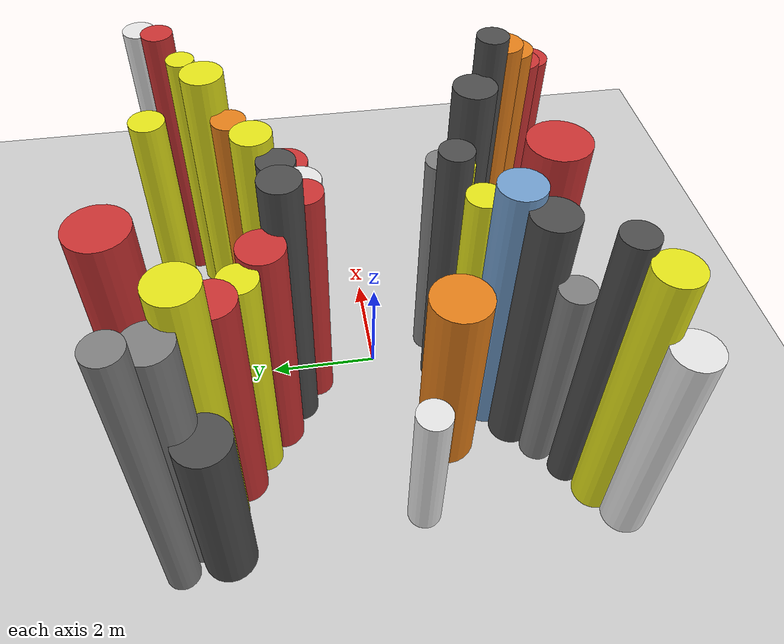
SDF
<?xml version='1.0'?>
<sdf version='1.6'>
  <world name='routeA_rl_v1__dense_recovery__rl_train__bottleneck_corridor__000028'>
    <!-- Sun light -->
    <light name='sun' type='directional'>
      <cast_shadows>1</cast_shadows>
      <pose>0 0 10 0 0 0</pose>
      <diffuse>0.8 0.8 0.8 1</diffuse>
      <specular>0.2 0.2 0.2 1</specular>
      <attenuation>
        <range>1000</range>
        <constant>0.9</constant>
        <linear>0.01</linear>
        <quadratic>0.001</quadratic>
      </attenuation>
      <direction>-0.5 0.1 -0.9</direction>
    </light>

    <!-- Ground plane -->
    <model name='ground_plane'>
      <static>1</static>
      <link name='link'>
        <collision name='collision'>
          <geometry>
            <plane>
              <normal>0 0 1</normal>
              <size>100 100</size>
            </plane>
          </geometry>
          <surface>
            <contact>
              <collide_bitmask>65535</collide_bitmask>
              <ode/>
            </contact>
            <friction>
              <ode>
                <mu>100</mu>
                <mu2>50</mu2>
              </ode>
              <torsional><ode/></torsional>
            </friction>
            <bounce/>
          </surface>
          <max_contacts>10</max_contacts>
        </collision>
        <visual name='visual'>
          <cast_shadows>0</cast_shadows>
          <geometry>
            <plane>
              <normal>0 0 1</normal>
              <size>100 100</size>
            </plane>
          </geometry>
          <material>
            <script>
              <uri>file://media/materials/scripts/gazebo.material</uri>
              <n>Gazebo/Grey</n>
            </script>
          </material>
        </visual>
      </link>
    </model>

    <!-- Environment -->
    <magnetic_field>6e-06 2.3e-05 -4.2e-05</magnetic_field>
    <atmosphere type='adiabatic'/>
    <physics name='default_physics' default='0' type='ode'>
      <gravity>0 0 -9.8</gravity>
      <max_step_size>0.004</max_step_size>
      <real_time_factor>1</real_time_factor>
      <real_time_update_rate>250</real_time_update_rate>
    </physics>
    <scene>
      <ambient>0.4 0.4 0.4 1</ambient>
      <background>0.7 0.7 0.7 1</background>
      <shadows>1</shadows>
    </scene>
    <wind/>
    <spherical_coordinates>
      <surface_model>EARTH_WGS84</surface_model>
      <latitude_deg>0</latitude_deg>
      <longitude_deg>0</longitude_deg>
      <elevation>0</elevation>
      <heading_deg>0</heading_deg>
    </spherical_coordinates>

    <!-- ============ OBSTACLES (40) ============ -->
    <model name='funnel_l_0'>
      <static>1</static>
      <link name='link'>
        <visual name='visual'>
          <geometry>
            <cylinder>
              <radius>0.3884</radius>
              <length>4.5175</length>
            </cylinder>
          </geometry>
          <material>
            <script>
              <n>Gazebo/White</n>
              <uri>file://media/materials/scripts/gazebo.material</uri>
            </script>
            <ambient>0.9 0.9 0.9 1</ambient>
          </material>
        </visual>
        <collision name='collision'>
          <geometry>
            <cylinder>
              <radius>0.3884</radius>
              <length>4.5175</length>
            </cylinder>
          </geometry>
          <max_contacts>10</max_contacts>
          <surface>
            <contact><ode/></contact>
            <bounce/>
            <friction>
              <ode><mu>1</mu><mu2>1</mu2></ode>
              <torsional><ode/></torsional>
            </friction>
          </surface>
        </collision>
      </link>
      <pose>-4.0000 -3.8000 2.2587 0 0 0.0000</pose>
    </model>

    <model name='funnel_r_0'>
      <static>1</static>
      <link name='link'>
        <visual name='visual'>
          <geometry>
            <cylinder>
              <radius>0.2866</radius>
              <length>5.9303</length>
            </cylinder>
          </geometry>
          <material>
            <script>
              <n>Gazebo/Grey</n>
              <uri>file://media/materials/scripts/gazebo.material</uri>
            </script>
            <ambient>0.5 0.5 0.5 1</ambient>
          </material>
        </visual>
        <collision name='collision'>
          <geometry>
            <cylinder>
              <radius>0.2866</radius>
              <length>5.9303</length>
            </cylinder>
          </geometry>
          <max_contacts>10</max_contacts>
          <surface>
            <contact><ode/></contact>
            <bounce/>
            <friction>
              <ode><mu>1</mu><mu2>1</mu2></ode>
              <torsional><ode/></torsional>
            </friction>
          </surface>
        </collision>
      </link>
      <pose>-4.0000 3.8000 2.9651 0 0 0.0000</pose>
    </model>

    <model name='funnel_l_1'>
      <static>1</static>
      <link name='link'>
        <visual name='visual'>
          <geometry>
            <cylinder>
              <radius>0.3729</radius>
              <length>5.6338</length>
            </cylinder>
          </geometry>
          <material>
            <script>
              <n>Gazebo/Yellow</n>
              <uri>file://media/materials/scripts/gazebo.material</uri>
            </script>
            <ambient>0.9 0.9 0.1 1</ambient>
          </material>
        </visual>
        <collision name='collision'>
          <geometry>
            <cylinder>
              <radius>0.3729</radius>
              <length>5.6338</length>
            </cylinder>
          </geometry>
          <max_contacts>10</max_contacts>
          <surface>
            <contact><ode/></contact>
            <bounce/>
            <friction>
              <ode><mu>1</mu><mu2>1</mu2></ode>
              <torsional><ode/></torsional>
            </friction>
          </surface>
        </collision>
      </link>
      <pose>-3.4857 -3.4286 2.8169 0 0 0.0000</pose>
    </model>

    <model name='funnel_r_1'>
      <static>1</static>
      <link name='link'>
        <visual name='visual'>
          <geometry>
            <cylinder>
              <radius>0.3765</radius>
              <length>5.3426</length>
            </cylinder>
          </geometry>
          <material>
            <script>
              <n>Gazebo/Grey</n>
              <uri>file://media/materials/scripts/gazebo.material</uri>
            </script>
            <ambient>0.5 0.5 0.5 1</ambient>
          </material>
        </visual>
        <collision name='collision'>
          <geometry>
            <cylinder>
              <radius>0.3765</radius>
              <length>5.3426</length>
            </cylinder>
          </geometry>
          <max_contacts>10</max_contacts>
          <surface>
            <contact><ode/></contact>
            <bounce/>
            <friction>
              <ode><mu>1</mu><mu2>1</mu2></ode>
              <torsional><ode/></torsional>
            </friction>
          </surface>
        </collision>
      </link>
      <pose>-3.4857 3.4286 2.6713 0 0 0.0000</pose>
    </model>

    <model name='funnel_l_2'>
      <static>1</static>
      <link name='link'>
        <visual name='visual'>
          <geometry>
            <cylinder>
              <radius>0.2924</radius>
              <length>5.8077</length>
            </cylinder>
          </geometry>
          <material>
            <script>
              <n>Gazebo/DarkGrey</n>
              <uri>file://media/materials/scripts/gazebo.material</uri>
            </script>
            <ambient>0.3 0.3 0.3 1</ambient>
          </material>
        </visual>
        <collision name='collision'>
          <geometry>
            <cylinder>
              <radius>0.2924</radius>
              <length>5.8077</length>
            </cylinder>
          </geometry>
          <max_contacts>10</max_contacts>
          <surface>
            <contact><ode/></contact>
            <bounce/>
            <friction>
              <ode><mu>1</mu><mu2>1</mu2></ode>
              <torsional><ode/></torsional>
            </friction>
          </surface>
        </collision>
      </link>
      <pose>-2.9714 -3.0571 2.9039 0 0 0.0000</pose>
    </model>

    <model name='funnel_r_2'>
      <static>1</static>
      <link name='link'>
        <visual name='visual'>
          <geometry>
            <cylinder>
              <radius>0.3986</radius>
              <length>5.8064</length>
            </cylinder>
          </geometry>
          <material>
            <script>
              <n>Gazebo/Yellow</n>
              <uri>file://media/materials/scripts/gazebo.material</uri>
            </script>
            <ambient>0.9 0.9 0.1 1</ambient>
          </material>
        </visual>
        <collision name='collision'>
          <geometry>
            <cylinder>
              <radius>0.3986</radius>
              <length>5.8064</length>
            </cylinder>
          </geometry>
          <max_contacts>10</max_contacts>
          <surface>
            <contact><ode/></contact>
            <bounce/>
            <friction>
              <ode><mu>1</mu><mu2>1</mu2></ode>
              <torsional><ode/></torsional>
            </friction>
          </surface>
        </collision>
      </link>
      <pose>-2.9714 3.0571 2.9032 0 0 0.0000</pose>
    </model>

    <model name='funnel_l_3'>
      <static>1</static>
      <link name='link'>
        <visual name='visual'>
          <geometry>
            <cylinder>
              <radius>0.3054</radius>
              <length>4.2600</length>
            </cylinder>
          </geometry>
          <material>
            <script>
              <n>Gazebo/Grey</n>
              <uri>file://media/materials/scripts/gazebo.material</uri>
            </script>
            <ambient>0.5 0.5 0.5 1</ambient>
          </material>
        </visual>
        <collision name='collision'>
          <geometry>
            <cylinder>
              <radius>0.3054</radius>
              <length>4.2600</length>
            </cylinder>
          </geometry>
          <max_contacts>10</max_contacts>
          <surface>
            <contact><ode/></contact>
            <bounce/>
            <friction>
              <ode><mu>1</mu><mu2>1</mu2></ode>
              <torsional><ode/></torsional>
            </friction>
          </surface>
        </collision>
      </link>
      <pose>-2.4571 -2.6857 2.1300 0 0 0.0000</pose>
    </model>

    <model name='funnel_r_3'>
      <static>1</static>
      <link name='link'>
        <visual name='visual'>
          <geometry>
            <cylinder>
              <radius>0.3887</radius>
              <length>4.9084</length>
            </cylinder>
          </geometry>
          <material>
            <script>
              <n>Gazebo/Red</n>
              <uri>file://media/materials/scripts/gazebo.material</uri>
            </script>
            <ambient>0.8 0.2 0.2 1</ambient>
          </material>
        </visual>
        <collision name='collision'>
          <geometry>
            <cylinder>
              <radius>0.3887</radius>
              <length>4.9084</length>
            </cylinder>
          </geometry>
          <max_contacts>10</max_contacts>
          <surface>
            <contact><ode/></contact>
            <bounce/>
            <friction>
              <ode><mu>1</mu><mu2>1</mu2></ode>
              <torsional><ode/></torsional>
            </friction>
          </surface>
        </collision>
      </link>
      <pose>-2.4571 2.6857 2.4542 0 0 0.0000</pose>
    </model>

    <model name='funnel_l_4'>
      <static>1</static>
      <link name='link'>
        <visual name='visual'>
          <geometry>
            <cylinder>
              <radius>0.3950</radius>
              <length>5.3540</length>
            </cylinder>
          </geometry>
          <material>
            <script>
              <n>Gazebo/DarkGrey</n>
              <uri>file://media/materials/scripts/gazebo.material</uri>
            </script>
            <ambient>0.3 0.3 0.3 1</ambient>
          </material>
        </visual>
        <collision name='collision'>
          <geometry>
            <cylinder>
              <radius>0.3950</radius>
              <length>5.3540</length>
            </cylinder>
          </geometry>
          <max_contacts>10</max_contacts>
          <surface>
            <contact><ode/></contact>
            <bounce/>
            <friction>
              <ode><mu>1</mu><mu2>1</mu2></ode>
              <torsional><ode/></torsional>
            </friction>
          </surface>
        </collision>
      </link>
      <pose>-1.9429 -2.3143 2.6770 0 0 0.0000</pose>
    </model>

    <model name='funnel_r_4'>
      <static>1</static>
      <link name='link'>
        <visual name='visual'>
          <geometry>
            <cylinder>
              <radius>0.3238</radius>
              <length>4.7228</length>
            </cylinder>
          </geometry>
          <material>
            <script>
              <n>Gazebo/Yellow</n>
              <uri>file://media/materials/scripts/gazebo.material</uri>
            </script>
            <ambient>0.9 0.9 0.1 1</ambient>
          </material>
        </visual>
        <collision name='collision'>
          <geometry>
            <cylinder>
              <radius>0.3238</radius>
              <length>4.7228</length>
            </cylinder>
          </geometry>
          <max_contacts>10</max_contacts>
          <surface>
            <contact><ode/></contact>
            <bounce/>
            <friction>
              <ode><mu>1</mu><mu2>1</mu2></ode>
              <torsional><ode/></torsional>
            </friction>
          </surface>
        </collision>
      </link>
      <pose>-1.9429 2.3143 2.3614 0 0 0.0000</pose>
    </model>

    <model name='funnel_l_5'>
      <static>1</static>
      <link name='link'>
        <visual name='visual'>
          <geometry>
            <cylinder>
              <radius>0.3903</radius>
              <length>5.5268</length>
            </cylinder>
          </geometry>
          <material>
            <script>
              <n>Gazebo/Blue</n>
              <uri>file://media/materials/scripts/gazebo.material</uri>
            </script>
            <ambient>0.447 0.624 0.812 1</ambient>
          </material>
        </visual>
        <collision name='collision'>
          <geometry>
            <cylinder>
              <radius>0.3903</radius>
              <length>5.5268</length>
            </cylinder>
          </geometry>
          <max_contacts>10</max_contacts>
          <surface>
            <contact><ode/></contact>
            <bounce/>
            <friction>
              <ode><mu>1</mu><mu2>1</mu2></ode>
              <torsional><ode/></torsional>
            </friction>
          </surface>
        </collision>
      </link>
      <pose>-1.4286 -1.9429 2.7634 0 0 0.0000</pose>
    </model>

    <model name='funnel_r_5'>
      <static>1</static>
      <link name='link'>
        <visual name='visual'>
          <geometry>
            <cylinder>
              <radius>0.3914</radius>
              <length>4.8126</length>
            </cylinder>
          </geometry>
          <material>
            <script>
              <n>Gazebo/Red</n>
              <uri>file://media/materials/scripts/gazebo.material</uri>
            </script>
            <ambient>0.8 0.2 0.2 1</ambient>
          </material>
        </visual>
        <collision name='collision'>
          <geometry>
            <cylinder>
              <radius>0.3914</radius>
              <length>4.8126</length>
            </cylinder>
          </geometry>
          <max_contacts>10</max_contacts>
          <surface>
            <contact><ode/></contact>
            <bounce/>
            <friction>
              <ode><mu>1</mu><mu2>1</mu2></ode>
              <torsional><ode/></torsional>
            </friction>
          </surface>
        </collision>
      </link>
      <pose>-1.4286 1.9429 2.4063 0 0 0.0000</pose>
    </model>

    <model name='funnel_l_6'>
      <static>1</static>
      <link name='link'>
        <visual name='visual'>
          <geometry>
            <cylinder>
              <radius>0.3079</radius>
              <length>4.9339</length>
            </cylinder>
          </geometry>
          <material>
            <script>
              <n>Gazebo/Yellow</n>
              <uri>file://media/materials/scripts/gazebo.material</uri>
            </script>
            <ambient>0.9 0.9 0.1 1</ambient>
          </material>
        </visual>
        <collision name='collision'>
          <geometry>
            <cylinder>
              <radius>0.3079</radius>
              <length>4.9339</length>
            </cylinder>
          </geometry>
          <max_contacts>10</max_contacts>
          <surface>
            <contact><ode/></contact>
            <bounce/>
            <friction>
              <ode><mu>1</mu><mu2>1</mu2></ode>
              <torsional><ode/></torsional>
            </friction>
          </surface>
        </collision>
      </link>
      <pose>-0.9143 -1.5714 2.4670 0 0 0.0000</pose>
    </model>

    <model name='funnel_r_6'>
      <static>1</static>
      <link name='link'>
        <visual name='visual'>
          <geometry>
            <cylinder>
              <radius>0.3428</radius>
              <length>5.6230</length>
            </cylinder>
          </geometry>
          <material>
            <script>
              <n>Gazebo/DarkGrey</n>
              <uri>file://media/materials/scripts/gazebo.material</uri>
            </script>
            <ambient>0.3 0.3 0.3 1</ambient>
          </material>
        </visual>
        <collision name='collision'>
          <geometry>
            <cylinder>
              <radius>0.3428</radius>
              <length>5.6230</length>
            </cylinder>
          </geometry>
          <max_contacts>10</max_contacts>
          <surface>
            <contact><ode/></contact>
            <bounce/>
            <friction>
              <ode><mu>1</mu><mu2>1</mu2></ode>
              <torsional><ode/></torsional>
            </friction>
          </surface>
        </collision>
      </link>
      <pose>-0.9143 1.5714 2.8115 0 0 0.0000</pose>
    </model>

    <model name='funnel_l_7'>
      <static>1</static>
      <link name='link'>
        <visual name='visual'>
          <geometry>
            <cylinder>
              <radius>0.2922</radius>
              <length>5.4496</length>
            </cylinder>
          </geometry>
          <material>
            <script>
              <n>Gazebo/DarkGrey</n>
              <uri>file://media/materials/scripts/gazebo.material</uri>
            </script>
            <ambient>0.3 0.3 0.3 1</ambient>
          </material>
        </visual>
        <collision name='collision'>
          <geometry>
            <cylinder>
              <radius>0.2922</radius>
              <length>5.4496</length>
            </cylinder>
          </geometry>
          <max_contacts>10</max_contacts>
          <surface>
            <contact><ode/></contact>
            <bounce/>
            <friction>
              <ode><mu>1</mu><mu2>1</mu2></ode>
              <torsional><ode/></torsional>
            </friction>
          </surface>
        </collision>
      </link>
      <pose>-0.4000 -1.2000 2.7248 0 0 0.0000</pose>
    </model>

    <model name='funnel_r_7'>
      <static>1</static>
      <link name='link'>
        <visual name='visual'>
          <geometry>
            <cylinder>
              <radius>0.3240</radius>
              <length>4.9192</length>
            </cylinder>
          </geometry>
          <material>
            <script>
              <n>Gazebo/Red</n>
              <uri>file://media/materials/scripts/gazebo.material</uri>
            </script>
            <ambient>0.8 0.2 0.2 1</ambient>
          </material>
        </visual>
        <collision name='collision'>
          <geometry>
            <cylinder>
              <radius>0.3240</radius>
              <length>4.9192</length>
            </cylinder>
          </geometry>
          <max_contacts>10</max_contacts>
          <surface>
            <contact><ode/></contact>
            <bounce/>
            <friction>
              <ode><mu>1</mu><mu2>1</mu2></ode>
              <torsional><ode/></torsional>
            </friction>
          </surface>
        </collision>
      </link>
      <pose>-0.4000 1.2000 2.4596 0 0 0.0000</pose>
    </model>

    <model name='funnel_out_l_0'>
      <static>1</static>
      <link name='link'>
        <visual name='visual'>
          <geometry>
            <cylinder>
              <radius>0.2909</radius>
              <length>4.6426</length>
            </cylinder>
          </geometry>
          <material>
            <script>
              <n>Gazebo/Grey</n>
              <uri>file://media/materials/scripts/gazebo.material</uri>
            </script>
            <ambient>0.5 0.5 0.5 1</ambient>
          </material>
        </visual>
        <collision name='collision'>
          <geometry>
            <cylinder>
              <radius>0.2909</radius>
              <length>4.6426</length>
            </cylinder>
          </geometry>
          <max_contacts>10</max_contacts>
          <surface>
            <contact><ode/></contact>
            <bounce/>
            <friction>
              <ode><mu>1</mu><mu2>1</mu2></ode>
              <torsional><ode/></torsional>
            </friction>
          </surface>
        </collision>
      </link>
      <pose>0.4000 -1.2000 2.3213 0 0 0.0000</pose>
    </model>

    <model name='funnel_out_r_0'>
      <static>1</static>
      <link name='link'>
        <visual name='visual'>
          <geometry>
            <cylinder>
              <radius>0.3631</radius>
              <length>4.5054</length>
            </cylinder>
          </geometry>
          <material>
            <script>
              <n>Gazebo/White</n>
              <uri>file://media/materials/scripts/gazebo.material</uri>
            </script>
            <ambient>0.9 0.9 0.9 1</ambient>
          </material>
        </visual>
        <collision name='collision'>
          <geometry>
            <cylinder>
              <radius>0.3631</radius>
              <length>4.5054</length>
            </cylinder>
          </geometry>
          <max_contacts>10</max_contacts>
          <surface>
            <contact><ode/></contact>
            <bounce/>
            <friction>
              <ode><mu>1</mu><mu2>1</mu2></ode>
              <torsional><ode/></torsional>
            </friction>
          </surface>
        </collision>
      </link>
      <pose>0.4000 1.2000 2.2527 0 0 0.0000</pose>
    </model>

    <model name='funnel_out_l_1'>
      <static>1</static>
      <link name='link'>
        <visual name='visual'>
          <geometry>
            <cylinder>
              <radius>0.3759</radius>
              <length>4.1164</length>
            </cylinder>
          </geometry>
          <material>
            <script>
              <n>Gazebo/Yellow</n>
              <uri>file://media/materials/scripts/gazebo.material</uri>
            </script>
            <ambient>0.9 0.9 0.1 1</ambient>
          </material>
        </visual>
        <collision name='collision'>
          <geometry>
            <cylinder>
              <radius>0.3759</radius>
              <length>4.1164</length>
            </cylinder>
          </geometry>
          <max_contacts>10</max_contacts>
          <surface>
            <contact><ode/></contact>
            <bounce/>
            <friction>
              <ode><mu>1</mu><mu2>1</mu2></ode>
              <torsional><ode/></torsional>
            </friction>
          </surface>
        </collision>
      </link>
      <pose>0.9143 -1.5714 2.0582 0 0 0.0000</pose>
    </model>

    <model name='funnel_out_r_1'>
      <static>1</static>
      <link name='link'>
        <visual name='visual'>
          <geometry>
            <cylinder>
              <radius>0.3478</radius>
              <length>4.5459</length>
            </cylinder>
          </geometry>
          <material>
            <script>
              <n>Gazebo/DarkGrey</n>
              <uri>file://media/materials/scripts/gazebo.material</uri>
            </script>
            <ambient>0.3 0.3 0.3 1</ambient>
          </material>
        </visual>
        <collision name='collision'>
          <geometry>
            <cylinder>
              <radius>0.3478</radius>
              <length>4.5459</length>
            </cylinder>
          </geometry>
          <max_contacts>10</max_contacts>
          <surface>
            <contact><ode/></contact>
            <bounce/>
            <friction>
              <ode><mu>1</mu><mu2>1</mu2></ode>
              <torsional><ode/></torsional>
            </friction>
          </surface>
        </collision>
      </link>
      <pose>0.9143 1.5714 2.2729 0 0 0.0000</pose>
    </model>

    <model name='funnel_out_l_2'>
      <static>1</static>
      <link name='link'>
        <visual name='visual'>
          <geometry>
            <cylinder>
              <radius>0.3914</radius>
              <length>5.3375</length>
            </cylinder>
          </geometry>
          <material>
            <script>
              <n>Gazebo/DarkGrey</n>
              <uri>file://media/materials/scripts/gazebo.material</uri>
            </script>
            <ambient>0.3 0.3 0.3 1</ambient>
          </material>
        </visual>
        <collision name='collision'>
          <geometry>
            <cylinder>
              <radius>0.3914</radius>
              <length>5.3375</length>
            </cylinder>
          </geometry>
          <max_contacts>10</max_contacts>
          <surface>
            <contact><ode/></contact>
            <bounce/>
            <friction>
              <ode><mu>1</mu><mu2>1</mu2></ode>
              <torsional><ode/></torsional>
            </friction>
          </surface>
        </collision>
      </link>
      <pose>1.4286 -1.9429 2.6688 0 0 0.0000</pose>
    </model>

    <model name='funnel_out_r_2'>
      <static>1</static>
      <link name='link'>
        <visual name='visual'>
          <geometry>
            <cylinder>
              <radius>0.3742</radius>
              <length>4.7814</length>
            </cylinder>
          </geometry>
          <material>
            <script>
              <n>Gazebo/Yellow</n>
              <uri>file://media/materials/scripts/gazebo.material</uri>
            </script>
            <ambient>0.9 0.9 0.1 1</ambient>
          </material>
        </visual>
        <collision name='collision'>
          <geometry>
            <cylinder>
              <radius>0.3742</radius>
              <length>4.7814</length>
            </cylinder>
          </geometry>
          <max_contacts>10</max_contacts>
          <surface>
            <contact><ode/></contact>
            <bounce/>
            <friction>
              <ode><mu>1</mu><mu2>1</mu2></ode>
              <torsional><ode/></torsional>
            </friction>
          </surface>
        </collision>
      </link>
      <pose>1.4286 1.9429 2.3907 0 0 0.0000</pose>
    </model>

    <model name='funnel_out_l_3'>
      <static>1</static>
      <link name='link'>
        <visual name='visual'>
          <geometry>
            <cylinder>
              <radius>0.2845</radius>
              <length>5.9707</length>
            </cylinder>
          </geometry>
          <material>
            <script>
              <n>Gazebo/DarkGrey</n>
              <uri>file://media/materials/scripts/gazebo.material</uri>
            </script>
            <ambient>0.3 0.3 0.3 1</ambient>
          </material>
        </visual>
        <collision name='collision'>
          <geometry>
            <cylinder>
              <radius>0.2845</radius>
              <length>5.9707</length>
            </cylinder>
          </geometry>
          <max_contacts>10</max_contacts>
          <surface>
            <contact><ode/></contact>
            <bounce/>
            <friction>
              <ode><mu>1</mu><mu2>1</mu2></ode>
              <torsional><ode/></torsional>
            </friction>
          </surface>
        </collision>
      </link>
      <pose>1.9429 -2.3143 2.9854 0 0 0.0000</pose>
    </model>

    <model name='funnel_out_r_3'>
      <static>1</static>
      <link name='link'>
        <visual name='visual'>
          <geometry>
            <cylinder>
              <radius>0.3147</radius>
              <length>4.7334</length>
            </cylinder>
          </geometry>
          <material>
            <script>
              <n>Gazebo/Orange</n>
              <uri>file://media/materials/scripts/gazebo.material</uri>
            </script>
            <ambient>0.9 0.5 0.1 1</ambient>
          </material>
        </visual>
        <collision name='collision'>
          <geometry>
            <cylinder>
              <radius>0.3147</radius>
              <length>4.7334</length>
            </cylinder>
          </geometry>
          <max_contacts>10</max_contacts>
          <surface>
            <contact><ode/></contact>
            <bounce/>
            <friction>
              <ode><mu>1</mu><mu2>1</mu2></ode>
              <torsional><ode/></torsional>
            </friction>
          </surface>
        </collision>
      </link>
      <pose>1.9429 2.3143 2.3667 0 0 0.0000</pose>
    </model>

    <model name='funnel_out_l_4'>
      <static>1</static>
      <link name='link'>
        <visual name='visual'>
          <geometry>
            <cylinder>
              <radius>0.3644</radius>
              <length>5.5084</length>
            </cylinder>
          </geometry>
          <material>
            <script>
              <n>Gazebo/Orange</n>
              <uri>file://media/materials/scripts/gazebo.material</uri>
            </script>
            <ambient>0.9 0.5 0.1 1</ambient>
          </material>
        </visual>
        <collision name='collision'>
          <geometry>
            <cylinder>
              <radius>0.3644</radius>
              <length>5.5084</length>
            </cylinder>
          </geometry>
          <max_contacts>10</max_contacts>
          <surface>
            <contact><ode/></contact>
            <bounce/>
            <friction>
              <ode><mu>1</mu><mu2>1</mu2></ode>
              <torsional><ode/></torsional>
            </friction>
          </surface>
        </collision>
      </link>
      <pose>2.4571 -2.6857 2.7542 0 0 0.0000</pose>
    </model>

    <model name='funnel_out_r_4'>
      <static>1</static>
      <link name='link'>
        <visual name='visual'>
          <geometry>
            <cylinder>
              <radius>0.3858</radius>
              <length>5.3850</length>
            </cylinder>
          </geometry>
          <material>
            <script>
              <n>Gazebo/Yellow</n>
              <uri>file://media/materials/scripts/gazebo.material</uri>
            </script>
            <ambient>0.9 0.9 0.1 1</ambient>
          </material>
        </visual>
        <collision name='collision'>
          <geometry>
            <cylinder>
              <radius>0.3858</radius>
              <length>5.3850</length>
            </cylinder>
          </geometry>
          <max_contacts>10</max_contacts>
          <surface>
            <contact><ode/></contact>
            <bounce/>
            <friction>
              <ode><mu>1</mu><mu2>1</mu2></ode>
              <torsional><ode/></torsional>
            </friction>
          </surface>
        </collision>
      </link>
      <pose>2.4571 2.6857 2.6925 0 0 0.0000</pose>
    </model>

    <model name='funnel_out_l_5'>
      <static>1</static>
      <link name='link'>
        <visual name='visual'>
          <geometry>
            <cylinder>
              <radius>0.3872</radius>
              <length>5.0650</length>
            </cylinder>
          </geometry>
          <material>
            <script>
              <n>Gazebo/Orange</n>
              <uri>file://media/materials/scripts/gazebo.material</uri>
            </script>
            <ambient>0.9 0.5 0.1 1</ambient>
          </material>
        </visual>
        <collision name='collision'>
          <geometry>
            <cylinder>
              <radius>0.3872</radius>
              <length>5.0650</length>
            </cylinder>
          </geometry>
          <max_contacts>10</max_contacts>
          <surface>
            <contact><ode/></contact>
            <bounce/>
            <friction>
              <ode><mu>1</mu><mu2>1</mu2></ode>
              <torsional><ode/></torsional>
            </friction>
          </surface>
        </collision>
      </link>
      <pose>2.9714 -3.0571 2.5325 0 0 0.0000</pose>
    </model>

    <model name='funnel_out_r_5'>
      <static>1</static>
      <link name='link'>
        <visual name='visual'>
          <geometry>
            <cylinder>
              <radius>0.2541</radius>
              <length>5.3739</length>
            </cylinder>
          </geometry>
          <material>
            <script>
              <n>Gazebo/Yellow</n>
              <uri>file://media/materials/scripts/gazebo.material</uri>
            </script>
            <ambient>0.9 0.9 0.1 1</ambient>
          </material>
        </visual>
        <collision name='collision'>
          <geometry>
            <cylinder>
              <radius>0.2541</radius>
              <length>5.3739</length>
            </cylinder>
          </geometry>
          <max_contacts>10</max_contacts>
          <surface>
            <contact><ode/></contact>
            <bounce/>
            <friction>
              <ode><mu>1</mu><mu2>1</mu2></ode>
              <torsional><ode/></torsional>
            </friction>
          </surface>
        </collision>
      </link>
      <pose>2.9714 3.0571 2.6869 0 0 0.0000</pose>
    </model>

    <model name='funnel_out_l_6'>
      <static>1</static>
      <link name='link'>
        <visual name='visual'>
          <geometry>
            <cylinder>
              <radius>0.3844</radius>
              <length>4.4952</length>
            </cylinder>
          </geometry>
          <material>
            <script>
              <n>Gazebo/Red</n>
              <uri>file://media/materials/scripts/gazebo.material</uri>
            </script>
            <ambient>0.8 0.2 0.2 1</ambient>
          </material>
        </visual>
        <collision name='collision'>
          <geometry>
            <cylinder>
              <radius>0.3844</radius>
              <length>4.4952</length>
            </cylinder>
          </geometry>
          <max_contacts>10</max_contacts>
          <surface>
            <contact><ode/></contact>
            <bounce/>
            <friction>
              <ode><mu>1</mu><mu2>1</mu2></ode>
              <torsional><ode/></torsional>
            </friction>
          </surface>
        </collision>
      </link>
      <pose>3.4857 -3.4286 2.2476 0 0 0.0000</pose>
    </model>

    <model name='funnel_out_r_6'>
      <static>1</static>
      <link name='link'>
        <visual name='visual'>
          <geometry>
            <cylinder>
              <radius>0.2853</radius>
              <length>5.6264</length>
            </cylinder>
          </geometry>
          <material>
            <script>
              <n>Gazebo/Red</n>
              <uri>file://media/materials/scripts/gazebo.material</uri>
            </script>
            <ambient>0.8 0.2 0.2 1</ambient>
          </material>
        </visual>
        <collision name='collision'>
          <geometry>
            <cylinder>
              <radius>0.2853</radius>
              <length>5.6264</length>
            </cylinder>
          </geometry>
          <max_contacts>10</max_contacts>
          <surface>
            <contact><ode/></contact>
            <bounce/>
            <friction>
              <ode><mu>1</mu><mu2>1</mu2></ode>
              <torsional><ode/></torsional>
            </friction>
          </surface>
        </collision>
      </link>
      <pose>3.4857 3.4286 2.8132 0 0 0.0000</pose>
    </model>

    <model name='funnel_out_l_7'>
      <static>1</static>
      <link name='link'>
        <visual name='visual'>
          <geometry>
            <cylinder>
              <radius>0.3781</radius>
              <length>4.1944</length>
            </cylinder>
          </geometry>
          <material>
            <script>
              <n>Gazebo/Red</n>
              <uri>file://media/materials/scripts/gazebo.material</uri>
            </script>
            <ambient>0.8 0.2 0.2 1</ambient>
          </material>
        </visual>
        <collision name='collision'>
          <geometry>
            <cylinder>
              <radius>0.3781</radius>
              <length>4.1944</length>
            </cylinder>
          </geometry>
          <max_contacts>10</max_contacts>
          <surface>
            <contact><ode/></contact>
            <bounce/>
            <friction>
              <ode><mu>1</mu><mu2>1</mu2></ode>
              <torsional><ode/></torsional>
            </friction>
          </surface>
        </collision>
      </link>
      <pose>4.0000 -3.8000 2.0972 0 0 0.0000</pose>
    </model>

    <model name='funnel_out_r_7'>
      <static>1</static>
      <link name='link'>
        <visual name='visual'>
          <geometry>
            <cylinder>
              <radius>0.2959</radius>
              <length>5.4276</length>
            </cylinder>
          </geometry>
          <material>
            <script>
              <n>Gazebo/White</n>
              <uri>file://media/materials/scripts/gazebo.material</uri>
            </script>
            <ambient>0.9 0.9 0.9 1</ambient>
          </material>
        </visual>
        <collision name='collision'>
          <geometry>
            <cylinder>
              <radius>0.2959</radius>
              <length>5.4276</length>
            </cylinder>
          </geometry>
          <max_contacts>10</max_contacts>
          <surface>
            <contact><ode/></contact>
            <bounce/>
            <friction>
              <ode><mu>1</mu><mu2>1</mu2></ode>
              <torsional><ode/></torsional>
            </friction>
          </surface>
        </collision>
      </link>
      <pose>4.0000 3.8000 2.7138 0 0 0.0000</pose>
    </model>

    <model name='bn_scatter_0'>
      <static>1</static>
      <link name='link'>
        <visual name='visual'>
          <geometry>
            <cylinder>
              <radius>0.5705</radius>
              <length>4.8904</length>
            </cylinder>
          </geometry>
          <material>
            <script>
              <n>Gazebo/Red</n>
              <uri>file://media/materials/scripts/gazebo.material</uri>
            </script>
            <ambient>0.8 0.2 0.2 1</ambient>
          </material>
        </visual>
        <collision name='collision'>
          <geometry>
            <cylinder>
              <radius>0.5705</radius>
              <length>4.8904</length>
            </cylinder>
          </geometry>
          <max_contacts>10</max_contacts>
          <surface>
            <contact><ode/></contact>
            <bounce/>
            <friction>
              <ode><mu>1</mu><mu2>1</mu2></ode>
              <torsional><ode/></torsional>
            </friction>
          </surface>
        </collision>
      </link>
      <pose>0.3180 -3.1701 2.4452 0 0 0.0000</pose>
    </model>

    <model name='bn_scatter_1'>
      <static>1</static>
      <link name='link'>
        <visual name='visual'>
          <geometry>
            <cylinder>
              <radius>0.4382</radius>
              <length>3.3036</length>
            </cylinder>
          </geometry>
          <material>
            <script>
              <n>Gazebo/Red</n>
              <uri>file://media/materials/scripts/gazebo.material</uri>
            </script>
            <ambient>0.8 0.2 0.2 1</ambient>
          </material>
        </visual>
        <collision name='collision'>
          <geometry>
            <cylinder>
              <radius>0.4382</radius>
              <length>3.3036</length>
            </cylinder>
          </geometry>
          <max_contacts>10</max_contacts>
          <surface>
            <contact><ode/></contact>
            <bounce/>
            <friction>
              <ode><mu>1</mu><mu2>1</mu2></ode>
              <torsional><ode/></torsional>
            </friction>
          </surface>
        </collision>
      </link>
      <pose>2.4529 1.3661 1.6518 0 0 0.0000</pose>
    </model>

    <model name='bn_scatter_2'>
      <static>1</static>
      <link name='link'>
        <visual name='visual'>
          <geometry>
            <cylinder>
              <radius>0.3066</radius>
              <length>4.5700</length>
            </cylinder>
          </geometry>
          <material>
            <script>
              <n>Gazebo/Grey</n>
              <uri>file://media/materials/scripts/gazebo.material</uri>
            </script>
            <ambient>0.5 0.5 0.5 1</ambient>
          </material>
        </visual>
        <collision name='collision'>
          <geometry>
            <cylinder>
              <radius>0.3066</radius>
              <length>4.5700</length>
            </cylinder>
          </geometry>
          <max_contacts>10</max_contacts>
          <surface>
            <contact><ode/></contact>
            <bounce/>
            <friction>
              <ode><mu>1</mu><mu2>1</mu2></ode>
              <torsional><ode/></torsional>
            </friction>
          </surface>
        </collision>
      </link>
      <pose>-0.8114 -2.4096 2.2850 0 0 0.0000</pose>
    </model>

    <model name='bn_scatter_3'>
      <static>1</static>
      <link name='link'>
        <visual name='visual'>
          <geometry>
            <cylinder>
              <radius>0.2967</radius>
              <length>3.0086</length>
            </cylinder>
          </geometry>
          <material>
            <script>
              <n>Gazebo/White</n>
              <uri>file://media/materials/scripts/gazebo.material</uri>
            </script>
            <ambient>0.9 0.9 0.9 1</ambient>
          </material>
        </visual>
        <collision name='collision'>
          <geometry>
            <cylinder>
              <radius>0.2967</radius>
              <length>3.0086</length>
            </cylinder>
          </geometry>
          <max_contacts>10</max_contacts>
          <surface>
            <contact><ode/></contact>
            <bounce/>
            <friction>
              <ode><mu>1</mu><mu2>1</mu2></ode>
              <torsional><ode/></torsional>
            </friction>
          </surface>
        </collision>
      </link>
      <pose>-3.5047 -0.3626 1.5043 0 0 0.0000</pose>
    </model>

    <model name='bn_scatter_4'>
      <static>1</static>
      <link name='link'>
        <visual name='visual'>
          <geometry>
            <cylinder>
              <radius>0.5846</radius>
              <length>4.2522</length>
            </cylinder>
          </geometry>
          <material>
            <script>
              <n>Gazebo/Red</n>
              <uri>file://media/materials/scripts/gazebo.material</uri>
            </script>
            <ambient>0.8 0.2 0.2 1</ambient>
          </material>
        </visual>
        <collision name='collision'>
          <geometry>
            <cylinder>
              <radius>0.5846</radius>
              <length>4.2522</length>
            </cylinder>
          </geometry>
          <max_contacts>10</max_contacts>
          <surface>
            <contact><ode/></contact>
            <bounce/>
            <friction>
              <ode><mu>1</mu><mu2>1</mu2></ode>
              <torsional><ode/></torsional>
            </friction>
          </surface>
        </collision>
      </link>
      <pose>-0.0200 4.5477 2.1261 0 0 0.0000</pose>
    </model>

    <model name='bn_scatter_5'>
      <static>1</static>
      <link name='link'>
        <visual name='visual'>
          <geometry>
            <cylinder>
              <radius>0.5251</radius>
              <length>3.9209</length>
            </cylinder>
          </geometry>
          <material>
            <script>
              <n>Gazebo/Orange</n>
              <uri>file://media/materials/scripts/gazebo.material</uri>
            </script>
            <ambient>0.9 0.5 0.1 1</ambient>
          </material>
        </visual>
        <collision name='collision'>
          <geometry>
            <cylinder>
              <radius>0.5251</radius>
              <length>3.9209</length>
            </cylinder>
          </geometry>
          <max_contacts>10</max_contacts>
          <surface>
            <contact><ode/></contact>
            <bounce/>
            <friction>
              <ode><mu>1</mu><mu2>1</mu2></ode>
              <torsional><ode/></torsional>
            </friction>
          </surface>
        </collision>
      </link>
      <pose>-2.0736 -1.0304 1.9605 0 0 0.0000</pose>
    </model>

    <model name='bn_scatter_6'>
      <static>1</static>
      <link name='link'>
        <visual name='visual'>
          <geometry>
            <cylinder>
              <radius>0.4510</radius>
              <length>3.5775</length>
            </cylinder>
          </geometry>
          <material>
            <script>
              <n>Gazebo/DarkGrey</n>
              <uri>file://media/materials/scripts/gazebo.material</uri>
            </script>
            <ambient>0.3 0.3 0.3 1</ambient>
          </material>
        </visual>
        <collision name='collision'>
          <geometry>
            <cylinder>
              <radius>0.4510</radius>
              <length>3.5775</length>
            </cylinder>
          </geometry>
          <max_contacts>10</max_contacts>
          <surface>
            <contact><ode/></contact>
            <bounce/>
            <friction>
              <ode><mu>1</mu><mu2>1</mu2></ode>
              <torsional><ode/></torsional>
            </friction>
          </surface>
        </collision>
      </link>
      <pose>-3.8169 3.0107 1.7887 0 0 0.0000</pose>
    </model>

    <model name='bn_scatter_7'>
      <static>1</static>
      <link name='link'>
        <visual name='visual'>
          <geometry>
            <cylinder>
              <radius>0.2923</radius>
              <length>5.6257</length>
            </cylinder>
          </geometry>
          <material>
            <script>
              <n>Gazebo/Yellow</n>
              <uri>file://media/materials/scripts/gazebo.material</uri>
            </script>
            <ambient>0.9 0.9 0.1 1</ambient>
          </material>
        </visual>
        <collision name='collision'>
          <geometry>
            <cylinder>
              <radius>0.2923</radius>
              <length>5.6257</length>
            </cylinder>
          </geometry>
          <max_contacts>10</max_contacts>
          <surface>
            <contact><ode/></contact>
            <bounce/>
            <friction>
              <ode><mu>1</mu><mu2>1</mu2></ode>
              <torsional><ode/></torsional>
            </friction>
          </surface>
        </collision>
      </link>
      <pose>0.8055 3.5167 2.8128 0 0 0.0000</pose>
    </model>

    <!-- GUI camera -->
    <gui fullscreen='0'>
      <camera name='user_camera'>
        <pose>-15 0 18 0 0.85 0.15</pose>
        <view_controller>orbit</view_controller>
        <projection_type>perspective</projection_type>
      </camera>
    </gui>
  </world>
</sdf>
